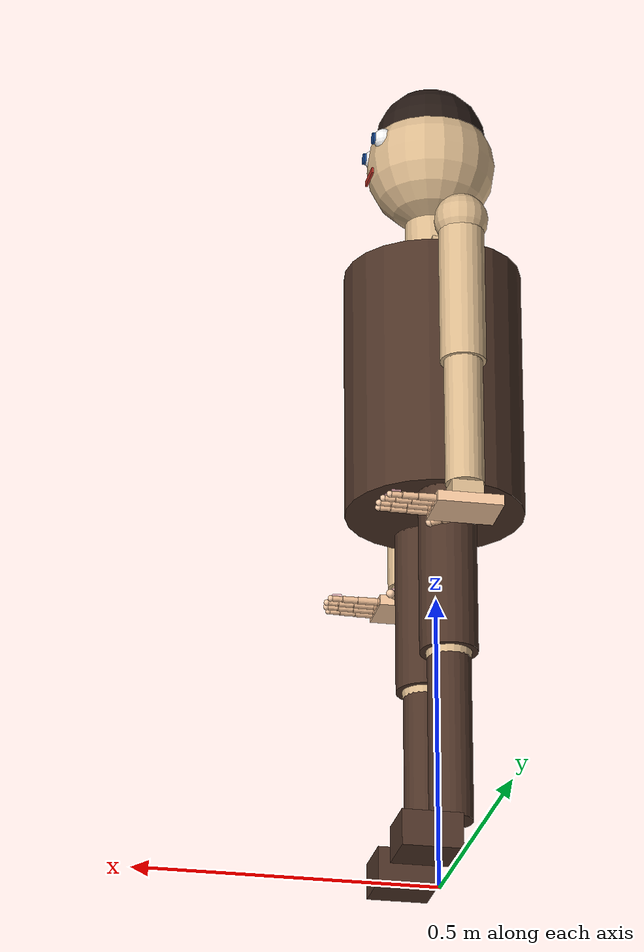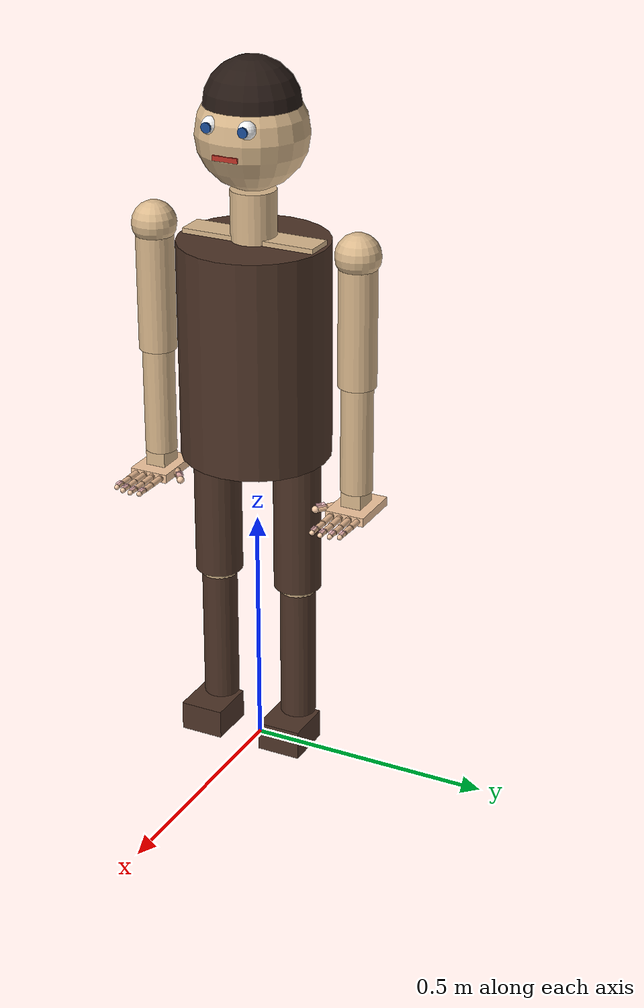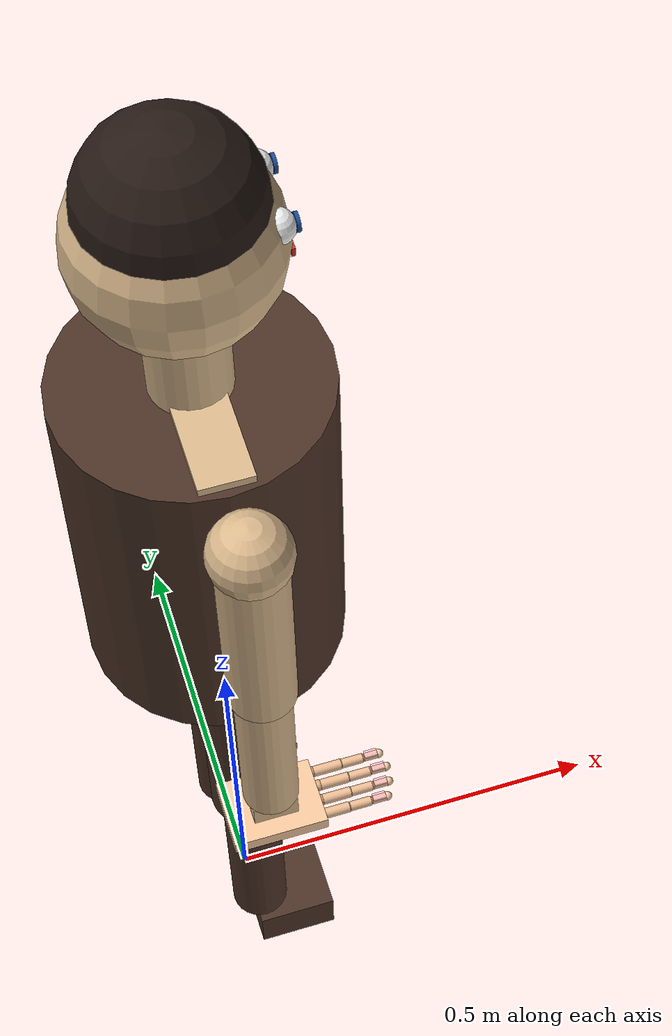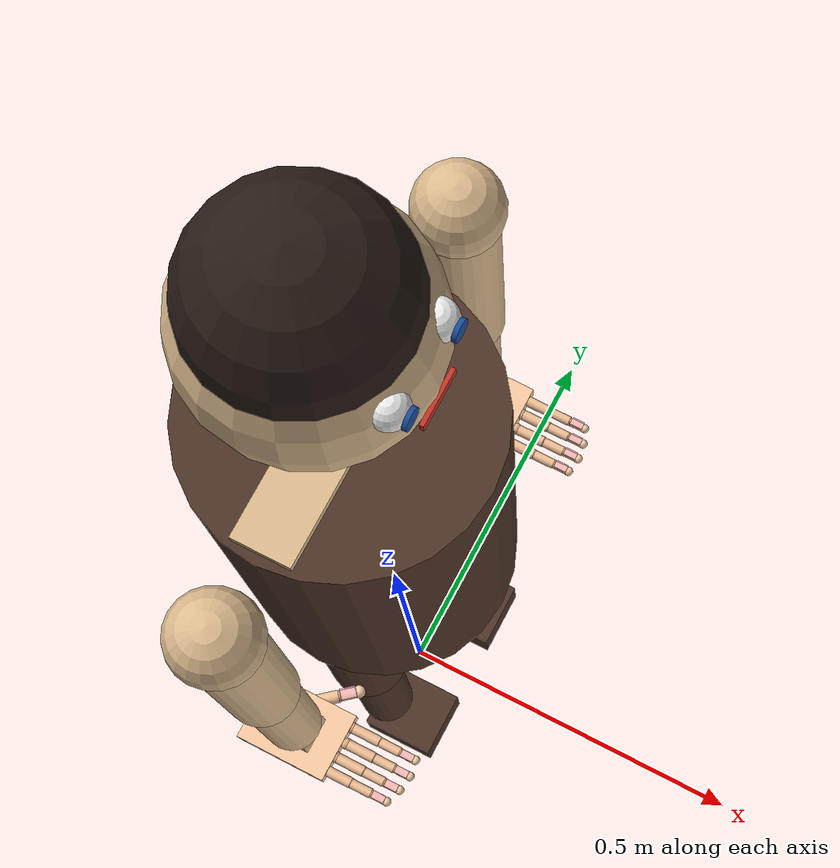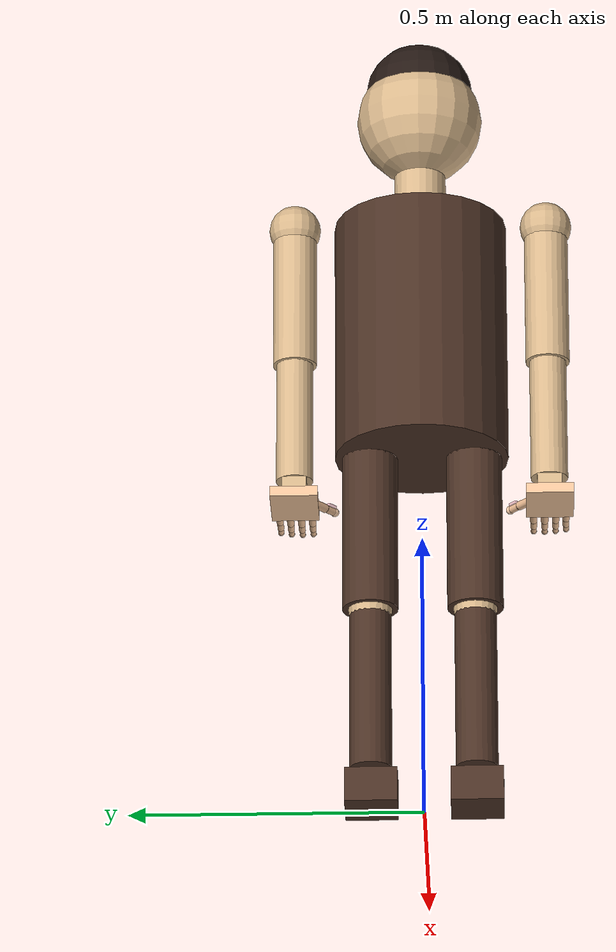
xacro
<?xml version="1.0"?>
<robot name="humanoid_robot" xmlns:xacro="http://wiki.ros.org/xacro">

  <!-- ─── Hand dimensions (copied from dual_robotic_hands.urdf.xacro) ──── -->
  <xacro:property name="hand_width"  value="0.082"/>
  <xacro:property name="hand_length" value="0.110"/>
  <xacro:property name="hand_height" value="0.018"/>

  <xacro:property name="proximal_length" value="0.036"/>
  <xacro:property name="middle_length"   value="0.026"/>
  <xacro:property name="distal_length"   value="0.020"/>

  <xacro:property name="finger_r0" value="0.0068"/>
  <xacro:property name="finger_r1" value="0.0062"/>
  <xacro:property name="finger_r2" value="0.0056"/>
  <xacro:property name="finger_r3" value="0.0048"/>

  <xacro:property name="thumb_proximal_length" value="0.032"/>
  <xacro:property name="thumb_distal_length"   value="0.024"/>
  <xacro:property name="thumb_r0" value="0.0082"/>
  <xacro:property name="thumb_r1" value="0.0075"/>
  <xacro:property name="thumb_r2" value="0.0064"/>

  <!-- ─── Material colors as xacro properties ─────────────────────────── -->
  <xacro:property name="c_body_skin"   value="0.85 0.72 0.55 1.0"/>
  <xacro:property name="c_body_dark"   value="0.30 0.20 0.15 1.0"/>
  <xacro:property name="c_hair_color"  value="0.15 0.10 0.08 1.0"/>
  <xacro:property name="c_eye_white"   value="0.95 0.95 0.95 1.0"/>
  <xacro:property name="c_eye_iris"    value="0.10 0.30 0.60 1.0"/>
  <xacro:property name="c_mouth_red"   value="0.75 0.20 0.15 1.0"/>
  <xacro:property name="c_skin_palm"   value="0.96 0.78 0.62 1.0"/>
  <xacro:property name="c_skin_finger" value="0.93 0.74 0.58 1.0"/>
  <xacro:property name="c_skin_knuckle" value="0.88 0.68 0.52 1.0"/>
  <xacro:property name="c_skin_tip"    value="0.97 0.80 0.66 1.0"/>
  <xacro:property name="c_skin_nail"   value="1.0  0.75 0.80 0.7"/>

  <!-- ─── Material macros (inline color so RViz picks it up) ───────────── -->
  <xacro:macro name="m_body_skin">   <material name="body_skin">  <color rgba="${c_body_skin}"/>   </material></xacro:macro>
  <xacro:macro name="m_body_dark">   <material name="body_dark">  <color rgba="${c_body_dark}"/>   </material></xacro:macro>
  <xacro:macro name="m_hair_color">  <material name="hair_color"> <color rgba="${c_hair_color}"/>  </material></xacro:macro>
  <xacro:macro name="m_eye_white">   <material name="eye_white">  <color rgba="${c_eye_white}"/>   </material></xacro:macro>
  <xacro:macro name="m_eye_iris">    <material name="eye_iris">   <color rgba="${c_eye_iris}"/>    </material></xacro:macro>
  <xacro:macro name="m_mouth_red">   <material name="mouth_red">  <color rgba="${c_mouth_red}"/>   </material></xacro:macro>
  <xacro:macro name="m_skin_palm">   <material name="skin_palm">    <color rgba="${c_skin_palm}"/>    </material></xacro:macro>
  <xacro:macro name="m_skin_finger"> <material name="skin_finger">  <color rgba="${c_skin_finger}"/>  </material></xacro:macro>
  <xacro:macro name="m_skin_knuckle"><material name="skin_knuckle"> <color rgba="${c_skin_knuckle}"/> </material></xacro:macro>
  <xacro:macro name="m_skin_tip">    <material name="skin_tip">     <color rgba="${c_skin_tip}"/>     </material></xacro:macro>
  <xacro:macro name="m_skin_nail">   <material name="skin_nail">    <color rgba="${c_skin_nail}"/>    </material></xacro:macro>

  <xacro:macro name="finger" params="prefix parent_link x_pos y_pos z_pos rotation axis_z">

    <link name="${prefix}_proximal">
      <visual><geometry><sphere radius="${finger_r0}"/></geometry>
        <xacro:m_skin_knuckle/><origin xyz="0 0 0" rpy="0 0 0"/></visual>
      <visual><geometry><cylinder radius="${finger_r1}" length="${proximal_length}"/></geometry>
        <xacro:m_skin_finger/>
        <origin xyz="${proximal_length/2} 0 0" rpy="0 1.5708 0"/></visual>
      <collision><geometry><box size="${proximal_length} ${finger_r1*2} ${finger_r1*2}"/></geometry>
        <origin xyz="${proximal_length/2} 0 0" rpy="0 0 0"/></collision>
      <inertial><mass value="0.05"/>
        <inertia ixx="0.0001" ixy="0" ixz="0" iyy="0.0001" iyz="0" izz="0.0001"/>
        <origin xyz="${proximal_length/2} 0 0" rpy="0 0 0"/></inertial>
    </link>

    <link name="${prefix}_middle">
      <visual><geometry><sphere radius="${finger_r1*0.92}"/></geometry>
        <xacro:m_skin_knuckle/><origin xyz="0 0 0" rpy="0 0 0"/></visual>
      <visual><geometry><cylinder radius="${finger_r2}" length="${middle_length}"/></geometry>
        <xacro:m_skin_finger/>
        <origin xyz="${middle_length/2} 0 0" rpy="0 1.5708 0"/></visual>
      <collision><geometry><box size="${middle_length} ${finger_r2*2} ${finger_r2*2}"/></geometry>
        <origin xyz="${middle_length/2} 0 0" rpy="0 0 0"/></collision>
      <inertial><mass value="0.03"/>
        <inertia ixx="0.0001" ixy="0" ixz="0" iyy="0.0001" iyz="0" izz="0.0001"/>
        <origin xyz="${middle_length/2} 0 0" rpy="0 0 0"/></inertial>
    </link>

    <link name="${prefix}_distal">
      <visual><geometry><sphere radius="${finger_r2*0.90}"/></geometry>
        <xacro:m_skin_knuckle/><origin xyz="0 0 0" rpy="0 0 0"/></visual>
      <visual><geometry><cylinder radius="${finger_r3}" length="${distal_length}"/></geometry>
        <xacro:m_skin_finger/>
        <origin xyz="${distal_length/2} 0 0" rpy="0 1.5708 0"/></visual>
      <visual><geometry><sphere radius="${finger_r3*1.1}"/></geometry>
        <xacro:m_skin_tip/>
        <origin xyz="${distal_length} 0 0" rpy="0 0 0"/></visual>
      <collision><geometry><box size="${distal_length} ${finger_r3*2} ${finger_r3*2}"/></geometry>
        <origin xyz="${distal_length/2} 0 0" rpy="0 0 0"/></collision>
      <inertial><mass value="0.02"/>
        <inertia ixx="0.0001" ixy="0" ixz="0" iyy="0.0001" iyz="0" izz="0.0001"/>
        <origin xyz="${distal_length/2} 0 0" rpy="0 0 0"/></inertial>
    </link>

    <link name="${prefix}_nail">
      <visual>
        <geometry><box size="${distal_length*0.75} ${finger_r3*1.8} ${finger_r3*0.6}"/></geometry>
        <xacro:m_skin_nail/><origin xyz="0 0 0" rpy="0 0 0"/></visual>
      <inertial><mass value="0.001"/>
        <inertia ixx="0.000001" ixy="0" ixz="0" iyy="0.000001" iyz="0" izz="0.000001"/>
        <origin xyz="0 0 0" rpy="0 0 0"/></inertial>
    </link>

    <joint name="${prefix}_base_joint" type="revolute">
      <parent link="${parent_link}"/><child link="${prefix}_proximal"/>
      <origin xyz="${x_pos} ${y_pos} ${z_pos}" rpy="0 0 ${rotation}"/>
      <axis xyz="0 0 ${axis_z}"/>
      <limit lower="-1.57" upper="1.57" effort="10" velocity="1.0"/>
    </joint>
    <joint name="${prefix}_proximal_joint" type="revolute">
      <parent link="${prefix}_proximal"/><child link="${prefix}_middle"/>
      <origin xyz="${proximal_length} 0 0" rpy="0 0 0"/>
      <axis xyz="0 1 0"/>
      <limit lower="-1.57" upper="1.57" effort="10" velocity="1.0"/>
    </joint>
    <joint name="${prefix}_middle_joint" type="revolute">
      <parent link="${prefix}_middle"/><child link="${prefix}_distal"/>
      <origin xyz="${middle_length} 0 0" rpy="0 0 0"/>
      <axis xyz="0 1 0"/>
      <limit lower="-1.57" upper="1.57" effort="10" velocity="1.0"/>
    </joint>
    <joint name="${prefix}_nail_joint" type="fixed">
      <parent link="${prefix}_distal"/><child link="${prefix}_nail"/>
      <origin xyz="${distal_length*0.5} 0 ${finger_r3*1.2}" rpy="0 0 0"/>
    </joint>
  </xacro:macro>

  <xacro:macro name="thumb" params="prefix parent_link x_pos y_pos z_pos rotation axis_z">

    <link name="${prefix}_proximal">
      <visual><geometry><sphere radius="${thumb_r0}"/></geometry>
        <xacro:m_skin_knuckle/><origin xyz="0 0 0" rpy="0 0 0"/></visual>
      <visual><geometry><cylinder radius="${thumb_r1}" length="${thumb_proximal_length}"/></geometry>
        <xacro:m_skin_finger/>
        <origin xyz="${thumb_proximal_length/2} 0 0" rpy="0 1.5708 0"/></visual>
      <collision><geometry><box size="${thumb_proximal_length} ${thumb_r1*2} ${thumb_r1*2}"/></geometry>
        <origin xyz="${thumb_proximal_length/2} 0 0" rpy="0 0 0"/></collision>
      <inertial><mass value="0.04"/>
        <inertia ixx="0.0001" ixy="0" ixz="0" iyy="0.0001" iyz="0" izz="0.0001"/>
        <origin xyz="${thumb_proximal_length/2} 0 0" rpy="0 0 0"/></inertial>
    </link>

    <link name="${prefix}_distal">
      <visual><geometry><sphere radius="${thumb_r1*0.90}"/></geometry>
        <xacro:m_skin_knuckle/><origin xyz="0 0 0" rpy="0 0 0"/></visual>
      <visual><geometry><cylinder radius="${thumb_r2}" length="${thumb_distal_length}"/></geometry>
        <xacro:m_skin_finger/>
        <origin xyz="${thumb_distal_length/2} 0 0" rpy="0 1.5708 0"/></visual>
      <visual><geometry><sphere radius="${thumb_r2*1.15}"/></geometry>
        <xacro:m_skin_tip/>
        <origin xyz="${thumb_distal_length} 0 0" rpy="0 0 0"/></visual>
      <collision><geometry><box size="${thumb_distal_length} ${thumb_r2*2} ${thumb_r2*2}"/></geometry>
        <origin xyz="${thumb_distal_length/2} 0 0" rpy="0 0 0"/></collision>
      <inertial><mass value="0.025"/>
        <inertia ixx="0.0001" ixy="0" ixz="0" iyy="0.0001" iyz="0" izz="0.0001"/>
        <origin xyz="${thumb_distal_length/2} 0 0" rpy="0 0 0"/></inertial>
    </link>

    <link name="${prefix}_nail">
      <visual>
        <geometry><box size="${thumb_distal_length*0.75} ${thumb_r2*2.0} ${thumb_r2*0.6}"/></geometry>
        <xacro:m_skin_nail/><origin xyz="0 0 0" rpy="0 0 0"/></visual>
      <inertial><mass value="0.001"/>
        <inertia ixx="0.000001" ixy="0" ixz="0" iyy="0.000001" iyz="0" izz="0.000001"/>
        <origin xyz="0 0 0" rpy="0 0 0"/></inertial>
    </link>

    <joint name="${prefix}_base_joint" type="revolute">
      <parent link="${parent_link}"/><child link="${prefix}_proximal"/>
      <origin xyz="${x_pos} ${y_pos} ${z_pos}" rpy="0 0 ${rotation}"/>
      <axis xyz="0 0 ${axis_z}"/>
      <limit lower="-1.57" upper="1.57" effort="10" velocity="1.0"/>
    </joint>
    <joint name="${prefix}_proximal_joint" type="revolute">
      <parent link="${prefix}_proximal"/><child link="${prefix}_distal"/>
      <origin xyz="${thumb_proximal_length} 0 0" rpy="0 0 0"/>
      <axis xyz="0 1 0"/>
      <limit lower="-1.57" upper="1.57" effort="10" velocity="1.0"/>
    </joint>
    <joint name="${prefix}_nail_joint" type="fixed">
      <parent link="${prefix}_distal"/><child link="${prefix}_nail"/>
      <origin xyz="${thumb_distal_length*0.5} 0 ${thumb_r2*1.2}" rpy="0 0 0"/>
    </joint>
  </xacro:macro>

  <xacro:macro name="hand_assembly" params="side mirror orient_yaw:=0">

    <link name="${side}_hand_base">
      <visual><geometry><box size="${hand_length} ${hand_width} ${hand_height}"/></geometry>
        <xacro:m_skin_palm/><origin xyz="0 0 0" rpy="0 0 0"/></visual>
      <collision><geometry><box size="${hand_length} ${hand_width} ${hand_height}"/></geometry>
        <origin xyz="0 0 0" rpy="0 0 0"/></collision>
      <inertial><mass value="0.5"/>
        <inertia ixx="0.001" ixy="0" ixz="0" iyy="0.001" iyz="0" izz="0.001"/>
        <origin xyz="0 0 0" rpy="0 0 0"/></inertial>
    </link>

    <!-- Attach hand below wrist. rpy="0 1.5708 0" maps hand +X → wrist -Z
         so fingers point downward (away from arm) in neutral pose. -->
    <joint name="${side}_hand_orient" type="fixed">
      <parent link="${side}_wrist"/>
      <child link="${side}_hand_base"/>
      <origin xyz="0 0 -0.04" rpy="0 0 ${orient_yaw}"/>
    </joint>

    <xacro:thumb  prefix="${side}_thumb"  parent_link="${side}_hand_base"
                  x_pos="0.00"  y_pos="${mirror * -0.032}" z_pos="0.0"
                  rotation="${mirror * -0.7}" axis_z="${mirror}"/>
    <xacro:finger prefix="${side}_index"  parent_link="${side}_hand_base"
                  x_pos="0.055" y_pos="${mirror * -0.028}" z_pos="0.0"
                  rotation="0" axis_z="${mirror}"/>
    <xacro:finger prefix="${side}_middle" parent_link="${side}_hand_base"
                  x_pos="0.058" y_pos="${mirror * -0.009}" z_pos="0.0"
                  rotation="0" axis_z="${mirror}"/>
    <xacro:finger prefix="${side}_ring"   parent_link="${side}_hand_base"
                  x_pos="0.055" y_pos="${mirror *  0.010}" z_pos="0.0"
                  rotation="0" axis_z="${mirror}"/>
    <xacro:finger prefix="${side}_pinky"  parent_link="${side}_hand_base"
                  x_pos="0.048" y_pos="${mirror *  0.028}" z_pos="0.0"
                  rotation="0" axis_z="${mirror}"/>
  </xacro:macro>

  <!-- ═══════════════════════════════════════════════════════════════════════
       BODY — ROOT LINKS
       ═══════════════════════════════════════════════════════════════════════ -->

  <link name="world">
    <inertial><mass value="0.001"/>
      <inertia ixx="0.000001" ixy="0" ixz="0" iyy="0.000001" iyz="0" izz="0.000001"/>
      <origin xyz="0 0 0" rpy="0 0 0"/></inertial>
  </link>

  <link name="base_link">
    <inertial><mass value="0.001"/>
      <inertia ixx="0.000001" ixy="0" ixz="0" iyy="0.000001" iyz="0" izz="0.000001"/>
      <origin xyz="0 0 0" rpy="0 0 0"/></inertial>
  </link>

  <joint name="world_to_base" type="fixed">
    <parent link="world"/><child link="base_link"/>
    <origin xyz="0 0 0" rpy="0 0 -1.5708"/>
  </joint>

  <!-- ─── TORSO ────────────────────────────────────────────────────────── -->
  <!-- Torso origin at 0.65 m above ground; visual cylinder spans 0.65–1.09 m -->
  <link name="torso">
    <!-- Main trunk -->
    <visual><origin xyz="0 0 0.22" rpy="0 0 0"/>
      <geometry><cylinder radius="0.15" length="0.44"/></geometry>
      <xacro:m_body_dark/></visual>
    <!-- Collar bone / chest highlight -->
    <visual><origin xyz="0 0 0.44" rpy="0 0 0"/>
      <geometry><box size="0.28 0.06 0.02"/></geometry>
      <xacro:m_body_skin/></visual>
    <collision><origin xyz="0 0 0.22" rpy="0 0 0"/>
      <geometry><cylinder radius="0.15" length="0.44"/></geometry></collision>
    <inertial><mass value="20.0"/>
      <inertia ixx="0.5" ixy="0" ixz="0" iyy="0.5" iyz="0" izz="0.3"/>
      <origin xyz="0 0 0.22" rpy="0 0 0"/></inertial>
  </link>

  <joint name="base_to_torso" type="fixed">
    <parent link="base_link"/><child link="torso"/>
    <origin xyz="0 0 0.65" rpy="0 0 0"/>
  </joint>

  <!-- ─── HEAD & NECK ──────────────────────────────────────────────────── -->
  <link name="neck_base">
    <inertial><mass value="0.001"/>
      <inertia ixx="0.000001" ixy="0" ixz="0" iyy="0.000001" iyz="0" izz="0.000001"/>
      <origin xyz="0 0 0" rpy="0 0 0"/></inertial>
  </link>
  <joint name="torso_to_neck" type="fixed">
    <parent link="torso"/><child link="neck_base"/>
    <origin xyz="0 0 0.44" rpy="0 0 0"/>
  </joint>

  <link name="neck">
    <visual><origin xyz="0 0 0.05" rpy="0 0 0"/>
      <geometry><cylinder radius="0.045" length="0.10"/></geometry>
      <xacro:m_body_skin/></visual>
    <collision><origin xyz="0 0 0.05" rpy="0 0 0"/>
      <geometry><cylinder radius="0.045" length="0.10"/></geometry></collision>
    <inertial><mass value="0.5"/>
      <inertia ixx="0.002" ixy="0" ixz="0" iyy="0.002" iyz="0" izz="0.001"/>
      <origin xyz="0 0 0.05" rpy="0 0 0"/></inertial>
  </link>
  <joint name="neck_pitch" type="revolute">
    <parent link="neck_base"/><child link="neck"/>
    <origin xyz="0 0 0" rpy="0 0 0"/>
    <axis xyz="0 1 0"/>
    <limit lower="-0.3" upper="0.5" effort="5" velocity="1.0"/>
  </joint>

  <link name="head">
    <!-- Skull -->
    <visual><origin xyz="0 0 0.11" rpy="0 0 0"/>
      <geometry><sphere radius="0.11"/></geometry>
      <xacro:m_body_skin/></visual>
    <!-- Hair cap (slightly larger sphere, darker) -->
    <visual><origin xyz="0 0 0.16" rpy="0 0 0"/>
      <geometry><sphere radius="0.095"/></geometry>
      <xacro:m_hair_color/></visual>
    <!-- Left eye white (robot faces +Y toward viewer) -->
    <visual><origin xyz="0.038 0.09 0.14" rpy="0 0 0"/>
      <geometry><sphere radius="0.018"/></geometry>
      <xacro:m_eye_white/></visual>
    <!-- Right eye white -->
    <visual><origin xyz="-0.038 0.09 0.14" rpy="0 0 0"/>
      <geometry><sphere radius="0.018"/></geometry>
      <xacro:m_eye_white/></visual>
    <!-- Left iris -->
    <visual><origin xyz="0.038 0.108 0.14" rpy="-1.5708 0 0"/>
      <geometry><cylinder radius="0.010" length="0.004"/></geometry>
      <xacro:m_eye_iris/></visual>
    <!-- Right iris -->
    <visual><origin xyz="-0.038 0.108 0.14" rpy="-1.5708 0 0"/>
      <geometry><cylinder radius="0.010" length="0.004"/></geometry>
      <xacro:m_eye_iris/></visual>
    <!-- Mouth -->
    <visual><origin xyz="0 0.107 0.085" rpy="0 0 0"/>
      <geometry><box size="0.052 0.004 0.010"/></geometry>
      <xacro:m_mouth_red/></visual>
    <collision><origin xyz="0 0 0.11" rpy="0 0 0"/>
      <geometry><sphere radius="0.11"/></geometry></collision>
    <inertial><mass value="3.0"/>
      <inertia ixx="0.03" ixy="0" ixz="0" iyy="0.03" iyz="0" izz="0.025"/>
      <origin xyz="0 0 0.11" rpy="0 0 0"/></inertial>
  </link>
  <joint name="neck_yaw" type="revolute">
    <parent link="neck"/><child link="head"/>
    <origin xyz="0 0 0.10" rpy="0 0 0"/>
    <axis xyz="0 0 1"/>
    <limit lower="-0.5" upper="0.5" effort="5" velocity="1.0"/>
  </joint>

  <link name="left_shoulder_link">
    <inertial><mass value="0.001"/>
      <inertia ixx="0.000001" ixy="0" ixz="0" iyy="0.000001" iyz="0" izz="0.000001"/>
      <origin xyz="0 0 0" rpy="0 0 0"/></inertial>
  </link>
  <joint name="torso_to_left_shoulder" type="fixed">
    <parent link="torso"/><child link="left_shoulder_link"/>
    <origin xyz="0.22 0 0.44" rpy="0 0 0"/>
  </joint>

  <link name="left_upper_arm">
    <!-- Shoulder ball -->
    <visual><origin xyz="0 0 0" rpy="0 0 0"/>
      <geometry><sphere radius="0.045"/></geometry>
      <xacro:m_body_skin/></visual>
    <!-- Arm cylinder — extends -Z from shoulder -->
    <visual><origin xyz="0 0 -0.13" rpy="0 0 0"/>
      <geometry><cylinder radius="0.038" length="0.26"/></geometry>
      <xacro:m_body_skin/></visual>
    <collision><origin xyz="0 0 -0.13" rpy="0 0 0"/>
      <geometry><cylinder radius="0.038" length="0.26"/></geometry></collision>
    <inertial><mass value="2.0"/>
      <inertia ixx="0.012" ixy="0" ixz="0" iyy="0.012" iyz="0" izz="0.002"/>
      <origin xyz="0 0 -0.13" rpy="0 0 0"/></inertial>
  </link>
  <joint name="left_shoulder_pitch" type="revolute">
    <parent link="left_shoulder_link"/><child link="left_upper_arm"/>
    <origin xyz="0 0 0" rpy="0 0 0"/>
    <axis xyz="0 1 0"/>
    <limit lower="-1.57" upper="1.57" effort="20" velocity="1.0"/>
  </joint>

  <!-- Intermediate link for shoulder roll (placed at elbow point) -->
  <link name="left_forearm_base">
    <inertial><mass value="0.001"/>
      <inertia ixx="0.000001" ixy="0" ixz="0" iyy="0.000001" iyz="0" izz="0.000001"/>
      <origin xyz="0 0 0" rpy="0 0 0"/></inertial>
  </link>
  <joint name="left_shoulder_roll" type="revolute">
    <parent link="left_upper_arm"/><child link="left_forearm_base"/>
    <origin xyz="0 0 -0.26" rpy="0 0 0"/>
    <axis xyz="1 0 0"/>
    <limit lower="-0.5" upper="1.57" effort="20" velocity="1.0"/>
  </joint>

  <link name="left_forearm">
    <!-- Elbow bump -->
    <visual><origin xyz="0 0 0" rpy="0 0 0"/>
      <geometry><sphere radius="0.032"/></geometry>
      <xacro:m_body_skin/></visual>
    <!-- Forearm cylinder -->
    <visual><origin xyz="0 0 -0.11" rpy="0 0 0">
      </origin>
      <geometry><cylinder radius="0.032" length="0.22"/></geometry>
      <xacro:m_body_skin/></visual>
    <collision><origin xyz="0 0 -0.11" rpy="0 0 0">
      </origin>
      <geometry><cylinder radius="0.032" length="0.22"/></geometry></collision>
    <inertial><mass value="1.5"/>
      <inertia ixx="0.008" ixy="0" ixz="0" iyy="0.008" iyz="0" izz="0.001"/>
      <origin xyz="0 0 -0.11" rpy="0 0 0"/></inertial>
  </link>
  <joint name="left_elbow_pitch" type="revolute">
    <parent link="left_forearm_base"/><child link="left_forearm"/>
    <origin xyz="0 0 0" rpy="0 0 0"/>
    <axis xyz="0 1 0"/>
    <limit lower="0" upper="2.0" effort="15" velocity="1.0"/>
  </joint>

  <link name="left_wrist">
    <visual><origin xyz="0 0 -0.015" rpy="0 0 0"/>
      <geometry><box size="0.042 0.052 0.030"/></geometry>
      <xacro:m_body_skin/></visual>
    <collision><origin xyz="0 0 -0.015" rpy="0 0 0">
      </origin>
      <geometry><box size="0.042 0.052 0.030"/></geometry></collision>
    <inertial><mass value="0.3"/>
      <inertia ixx="0.001" ixy="0" ixz="0" iyy="0.001" iyz="0" izz="0.001"/>
      <origin xyz="0 0 -0.015" rpy="0 0 0"/></inertial>
  </link>
  <joint name="left_wrist_pitch" type="revolute">
    <parent link="left_forearm"/><child link="left_wrist"/>
    <origin xyz="0 0 -0.22" rpy="0 0 0"/>
    <axis xyz="0 1 0"/>
    <limit lower="-0.5" upper="0.5" effort="10" velocity="1.0"/>
  </joint>

  <link name="right_shoulder_link">
    <inertial><mass value="0.001"/>
      <inertia ixx="0.000001" ixy="0" ixz="0" iyy="0.000001" iyz="0" izz="0.000001"/>
      <origin xyz="0 0 0" rpy="0 0 0"/></inertial>
  </link>
  <joint name="torso_to_right_shoulder" type="fixed">
    <parent link="torso"/><child link="right_shoulder_link"/>
    <origin xyz="-0.22 0 0.44" rpy="0 0 0"/>
  </joint>

  <link name="right_upper_arm">
    <visual><origin xyz="0 0 0" rpy="0 0 0">
      </origin>
      <geometry><sphere radius="0.045"/></geometry>
      <xacro:m_body_skin/></visual>
    <visual><origin xyz="0 0 -0.13" rpy="0 0 0">
      </origin>
      <geometry><cylinder radius="0.038" length="0.26"/></geometry>
      <xacro:m_body_skin/></visual>
    <collision><origin xyz="0 0 -0.13" rpy="0 0 0">
      </origin>
      <geometry><cylinder radius="0.038" length="0.26"/></geometry></collision>
    <inertial><mass value="2.0"/>
      <inertia ixx="0.012" ixy="0" ixz="0" iyy="0.012" iyz="0" izz="0.002"/>
      <origin xyz="0 0 -0.13" rpy="0 0 0"/></inertial>
  </link>
  <joint name="right_shoulder_pitch" type="revolute">
    <parent link="right_shoulder_link"/><child link="right_upper_arm"/>
    <origin xyz="0 0 0" rpy="0 0 0"/>
    <axis xyz="0 1 0"/>
    <limit lower="-1.57" upper="1.57" effort="20" velocity="1.0"/>
  </joint>

  <link name="right_forearm_base">
    <inertial><mass value="0.001"/>
      <inertia ixx="0.000001" ixy="0" ixz="0" iyy="0.000001" iyz="0" izz="0.000001"/>
      <origin xyz="0 0 0" rpy="0 0 0"/></inertial>
  </link>
  <joint name="right_shoulder_roll" type="revolute">
    <parent link="right_upper_arm"/><child link="right_forearm_base"/>
    <origin xyz="0 0 -0.26" rpy="0 0 0"/>
    <axis xyz="1 0 0"/>
    <limit lower="-1.57" upper="0.5" effort="20" velocity="1.0"/>
  </joint>

  <link name="right_forearm">
    <visual><origin xyz="0 0 0" rpy="0 0 0">
      </origin>
      <geometry><sphere radius="0.032"/></geometry>
      <xacro:m_body_skin/></visual>
    <visual><origin xyz="0 0 -0.11" rpy="0 0 0">
      </origin>
      <geometry><cylinder radius="0.032" length="0.22"/></geometry>
      <xacro:m_body_skin/></visual>
    <collision><origin xyz="0 0 -0.11" rpy="0 0 0">
      </origin>
      <geometry><cylinder radius="0.032" length="0.22"/></geometry></collision>
    <inertial><mass value="1.5"/>
      <inertia ixx="0.008" ixy="0" ixz="0" iyy="0.008" iyz="0" izz="0.001"/>
      <origin xyz="0 0 -0.11" rpy="0 0 0"/></inertial>
  </link>
  <joint name="right_elbow_pitch" type="revolute">
    <parent link="right_forearm_base"/><child link="right_forearm"/>
    <origin xyz="0 0 0" rpy="0 0 0"/>
    <axis xyz="0 1 0"/>
    <limit lower="0" upper="2.0" effort="15" velocity="1.0"/>
  </joint>

  <link name="right_wrist">
    <visual><origin xyz="0 0 -0.015" rpy="0 0 0">
      </origin>
      <geometry><box size="0.042 0.052 0.030"/></geometry>
      <xacro:m_body_skin/></visual>
    <collision><origin xyz="0 0 -0.015" rpy="0 0 0">
      </origin>
      <geometry><box size="0.042 0.052 0.030"/></geometry></collision>
    <inertial><mass value="0.3"/>
      <inertia ixx="0.001" ixy="0" ixz="0" iyy="0.001" iyz="0" izz="0.001"/>
      <origin xyz="0 0 -0.015" rpy="0 0 0"/></inertial>
  </link>
  <joint name="right_wrist_pitch" type="revolute">
    <parent link="right_forearm"/><child link="right_wrist"/>
    <origin xyz="0 0 -0.22" rpy="0 0 0"/>
    <axis xyz="0 1 0"/>
    <limit lower="-0.5" upper="0.5" effort="10" velocity="1.0"/>
  </joint>

  <!-- ═══════════════════════════════════════════════════════════════════════
       HANDS — attach to wrists via macro
       ═══════════════════════════════════════════════════════════════════════ -->
    <xacro:hand_assembly side="left"  mirror="-1"  orient_yaw="1.5708"/>
    <xacro:hand_assembly side="right" mirror="1" orient_yaw="1.5708"/>

  <link name="left_hip_link">
    <inertial><mass value="0.001"/>
      <inertia ixx="0.000001" ixy="0" ixz="0" iyy="0.000001" iyz="0" izz="0.000001"/>
      <origin xyz="0 0 0" rpy="0 0 0"/></inertial>
  </link>
  <joint name="torso_to_left_hip" type="fixed">
    <parent link="torso"/><child link="left_hip_link"/>
    <origin xyz="0.09 0 0" rpy="0 0 0"/>
  </joint>

  <link name="left_thigh">
    <!-- Hip socket -->
    <visual><origin xyz="0 0 0" rpy="0 0 0">
      </origin>
      <geometry><sphere radius="0.048"/></geometry>
      <xacro:m_body_dark/></visual>
    <!-- Thigh cylinder -->
    <visual><origin xyz="0 0 -0.14" rpy="0 0 0">
      </origin>
      <geometry><cylinder radius="0.048" length="0.28"/></geometry>
      <xacro:m_body_dark/></visual>
    <collision><origin xyz="0 0 -0.14" rpy="0 0 0">
      </origin>
      <geometry><cylinder radius="0.048" length="0.28"/></geometry></collision>
    <inertial><mass value="5.0"/>
      <inertia ixx="0.04" ixy="0" ixz="0" iyy="0.04" iyz="0" izz="0.005"/>
      <origin xyz="0 0 -0.14" rpy="0 0 0"/></inertial>
  </link>
  <joint name="left_hip_pitch" type="fixed">
    <parent link="left_hip_link"/><child link="left_thigh"/>
    <origin xyz="0 0 0" rpy="0 0 0"/>
  </joint>

  <link name="left_shin">
    <!-- Knee bump -->
    <visual><origin xyz="0 0 0" rpy="0 0 0">
      </origin>
      <geometry><sphere radius="0.038"/></geometry>
      <xacro:m_body_skin/></visual>
    <!-- Shin cylinder -->
    <visual><origin xyz="0 0 -0.145" rpy="0 0 0">
      </origin>
      <geometry><cylinder radius="0.036" length="0.29"/></geometry>
      <xacro:m_body_dark/></visual>
    <collision><origin xyz="0 0 -0.145" rpy="0 0 0">
      </origin>
      <geometry><cylinder radius="0.036" length="0.29"/></geometry></collision>
    <inertial><mass value="3.0"/>
      <inertia ixx="0.025" ixy="0" ixz="0" iyy="0.025" iyz="0" izz="0.003"/>
      <origin xyz="0 0 -0.145" rpy="0 0 0"/></inertial>
  </link>
  <joint name="left_knee_pitch" type="fixed">
    <parent link="left_thigh"/><child link="left_shin"/>
    <origin xyz="0 0 -0.28" rpy="0 0 0"/>
  </joint>

  <link name="left_foot">
    <visual><origin xyz="0 0.04 -0.03" rpy="0 0 0">
      </origin>
      <geometry><box size="0.09 0.10 0.06"/></geometry>
      <xacro:m_body_dark/></visual>
    <collision><origin xyz="0 0.04 -0.03" rpy="0 0 0">
      </origin>
      <geometry><box size="0.09 0.10 0.06"/></geometry></collision>
    <inertial><mass value="1.0"/>
      <inertia ixx="0.003" ixy="0" ixz="0" iyy="0.005" iyz="0" izz="0.005"/>
      <origin xyz="0 0.04 -0.03" rpy="0 0 0"/></inertial>
  </link>
  <joint name="left_ankle_pitch" type="fixed">
    <parent link="left_shin"/><child link="left_foot"/>
    <origin xyz="0 0 -0.29" rpy="0 0 0"/>
  </joint>

  <!-- ═══════════════════════════════════════════════════════════════════════
       RIGHT LEG  (mirror of left — x negated)
       ═══════════════════════════════════════════════════════════════════════ -->

  <link name="right_hip_link">
    <inertial><mass value="0.001"/>
      <inertia ixx="0.000001" ixy="0" ixz="0" iyy="0.000001" iyz="0" izz="0.000001"/>
      <origin xyz="0 0 0" rpy="0 0 0"/></inertial>
  </link>
  <joint name="torso_to_right_hip" type="fixed">
    <parent link="torso"/><child link="right_hip_link"/>
    <origin xyz="-0.09 0 0" rpy="0 0 0"/>
  </joint>

  <link name="right_thigh">
    <visual><origin xyz="0 0 0" rpy="0 0 0">
      </origin>
      <geometry><sphere radius="0.048"/></geometry>
      <xacro:m_body_dark/></visual>
    <visual><origin xyz="0 0 -0.14" rpy="0 0 0">
      </origin>
      <geometry><cylinder radius="0.048" length="0.28"/></geometry>
      <xacro:m_body_dark/></visual>
    <collision><origin xyz="0 0 -0.14" rpy="0 0 0">
      </origin>
      <geometry><cylinder radius="0.048" length="0.28"/></geometry></collision>
    <inertial><mass value="5.0"/>
      <inertia ixx="0.04" ixy="0" ixz="0" iyy="0.04" iyz="0" izz="0.005"/>
      <origin xyz="0 0 -0.14" rpy="0 0 0"/></inertial>
  </link>
  <joint name="right_hip_pitch" type="fixed">
    <parent link="right_hip_link"/><child link="right_thigh"/>
    <origin xyz="0 0 0" rpy="0 0 0"/>
  </joint>

  <link name="right_shin">
    <visual><origin xyz="0 0 0" rpy="0 0 0">
      </origin>
      <geometry><sphere radius="0.038"/></geometry>
      <xacro:m_body_skin/></visual>
    <visual><origin xyz="0 0 -0.145" rpy="0 0 0">
      </origin>
      <geometry><cylinder radius="0.036" length="0.29"/></geometry>
      <xacro:m_body_dark/></visual>
    <collision><origin xyz="0 0 -0.145" rpy="0 0 0">
      </origin>
      <geometry><cylinder radius="0.036" length="0.29"/></geometry></collision>
    <inertial><mass value="3.0"/>
      <inertia ixx="0.025" ixy="0" ixz="0" iyy="0.025" iyz="0" izz="0.003"/>
      <origin xyz="0 0 -0.145" rpy="0 0 0"/></inertial>
  </link>
  <joint name="right_knee_pitch" type="fixed">
    <parent link="right_thigh"/><child link="right_shin"/>
    <origin xyz="0 0 -0.28" rpy="0 0 0"/>
  </joint>

  <link name="right_foot">
    <visual><origin xyz="0 0.04 -0.03" rpy="0 0 0">
      </origin>
      <geometry><box size="0.09 0.10 0.06"/></geometry>
      <xacro:m_body_dark/></visual>
    <collision><origin xyz="0 0.04 -0.03" rpy="0 0 0">
      </origin>
      <geometry><box size="0.09 0.10 0.06"/></geometry></collision>
    <inertial><mass value="1.0"/>
      <inertia ixx="0.003" ixy="0" ixz="0" iyy="0.005" iyz="0" izz="0.005"/>
      <origin xyz="0 0.04 -0.03" rpy="0 0 0"/></inertial>
  </link>
  <joint name="right_ankle_pitch" type="fixed">
    <parent link="right_shin"/><child link="right_foot"/>
    <origin xyz="0 0 -0.29" rpy="0 0 0"/>
  </joint>

</robot>
